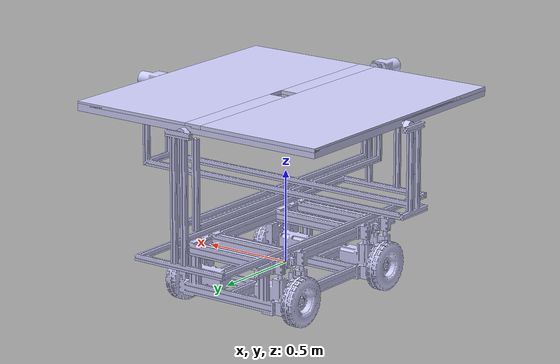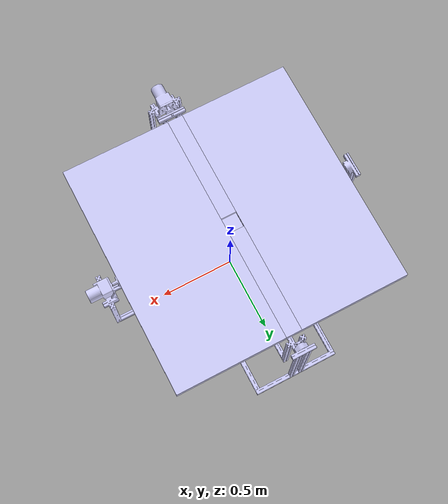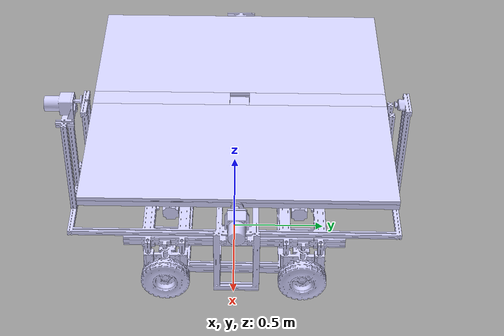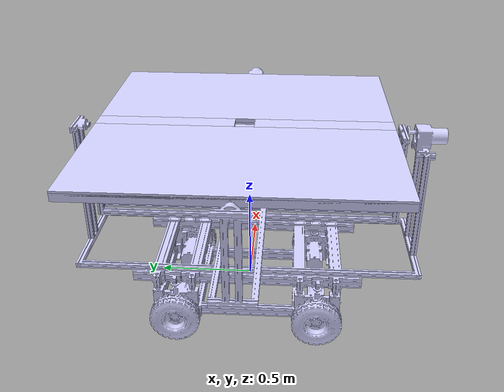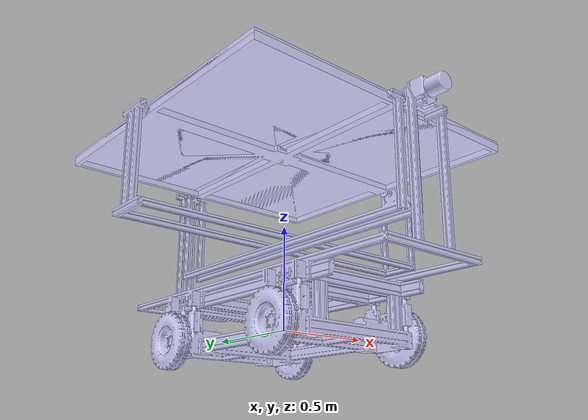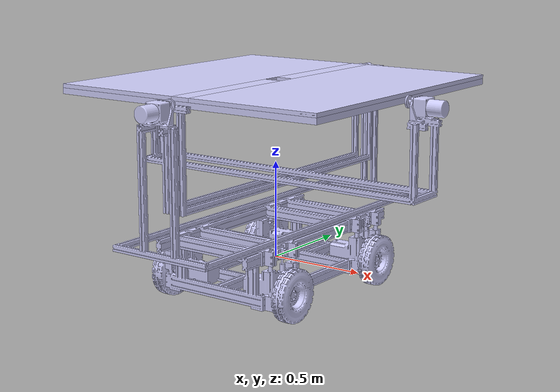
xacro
<?xml version="1.0" encoding="utf-8"?>

<robot name="Mobile_Leveling_Platform_V2" xmlns:xacro="http://ros.org/wiki/xacro">

<xacro:include filename="$(find Mobile_Leveling_Platform_V2)/urdf/Mobile_Leveling_Platform_V2.gazebo.xacro" />

<!--Mobile_Robot control-->
  <gazebo>
    <plugin name="skid_steer_drive_controller" filename="libgazebo_ros_skid_steer_drive.so">
      <updateRate>100</updateRate>
      <robotNamespace>/</robotNamespace>
      <leftFrontJoint>front_L_motor_rev_joint</leftFrontJoint>
      <rightFrontJoint>front_R_motor_rev_joint</rightFrontJoint>
      <leftRearJoint>rear_L_motor_rev_joint</leftRearJoint>
      <rightRearJoint>rear_R_motor_rev_joint</rightRearJoint>
      <wheelSeparation>0.67</wheelSeparation>
      <wheelDiameter>0.264453</wheelDiameter>
      <robotBaseFrame>base_link</robotBaseFrame>
      <torque>100</torque>
      <commandTopic>twist2gazebo</commandTopic>
      <broadcastTF>false</broadcastTF>
    </plugin>
  </gazebo>

<!--Leveling_Platform control-->
  <gazebo>
    <plugin name="gazebo_ros_control" filename="libgazebo_ros_control.so">
      <robotNamespace>platform/MLP</robotNamespace>
      <robotSimType>gazebo_ros_control/DefaultRobotHWSim</robotSimType>
    </plugin>
  </gazebo>

  <transmission name="trans1">
     <type>transmission_interface/SimpleTransmission</type>
     <joint name="front_motor_rev_joint">
       <hardwareInterface>hardware_interface/PositionJointInterface</hardwareInterface>
     </joint>
     <actuator name="front_motor_rev_motor">
       <mechanicalReduction>50</mechanicalReduction>
       <hardwareInterface>hardware_interface/PositionJointInterface</hardwareInterface>
     </actuator>
  </transmission>

  <transmission name="trans2">
     <type>transmission_interface/SimpleTransmission</type>
     <joint name="upper_motor_rev_joint">
       <hardwareInterface>hardware_interface/PositionJointInterface</hardwareInterface>
     </joint>
     <actuator name="upper_motor_rev_motor">
       <mechanicalReduction>50</mechanicalReduction>
       <hardwareInterface>hardware_interface/PositionJointInterface</hardwareInterface>
     </actuator>
  </transmission>

<!--IMU Plugin-->
  <gazebo reference="imu_link_upper">
    <gravity>true</gravity>
    <sensor name="imu_sensor" type="imu">
      <always_on>true</always_on>
      <update_rate>100</update_rate>
      <visualize>true</visualize>
      <topic>__default_topic__</topic>
      <plugin filename="libgazebo_ros_imu_sensor.so" name="imu_plugin">
        <topicName>imu_upper</topicName>
        <bodyName>imu_link_upper</bodyName>
        <updateRateHZ>10.0</updateRateHZ>
        <gaussianNoise>0.0</gaussianNoise>
        <xyzOffset>0 0 0</xyzOffset>
        <rpyOffset>0 0 0</rpyOffset>
        <frameName>imu_link_upper</frameName>
        <initialOrientationAsReference>false</initialOrientationAsReference>
      </plugin>
      <pose>0 0 0 0 0 0</pose>
    </sensor>
  </gazebo>

  <gazebo reference="imu_link_base">
    <gravity>true</gravity>
    <sensor name="imu_sensor" type="imu">
      <always_on>true</always_on>
      <update_rate>100</update_rate>
      <visualize>true</visualize>
      <topic>__default_topic__</topic>
      <plugin filename="libgazebo_ros_imu_sensor.so" name="imu_plugin">
        <topicName>imu_base</topicName>
        <bodyName>imu_link_base</bodyName>
        <updateRateHZ>10.0</updateRateHZ>
        <gaussianNoise>0.0</gaussianNoise>
        <xyzOffset>0 0 0</xyzOffset>
        <rpyOffset>0 0 0</rpyOffset>
        <frameName>imu_link_base</frameName>
        <initialOrientationAsReference>false</initialOrientationAsReference>
      </plugin>
      <pose>0 0 0 0 0 0</pose>
    </sensor>
  </gazebo>

<!-- GPS -->
  <gazebo>
    <plugin name="GazeboRosGps" filename="libhector_gazebo_ros_gps.so">
        <updateRate>100</updateRate>
        <robotNamespace>platform/MLP</robotNamespace>
        <bodyName>GPS_link</bodyName>
        <frameId>default_empty</frameId>
        <topicName>fix</topicName>
	<velocityTopicName>fix_velocity</velocityTopicName>
	<referenceLatitude>36.146581</referenceLatitude>
	<referenceLongitude>128.388039</referenceLongitude>
	<referenceHeading>90</referenceHeading>
	<referenceAltitude>0</referenceAltitude>
    	<status>STATIS_FIX</status>
	<service>SERVICE_GPS	</service>
	<offset>0 0 0 0 0 0</offset>
	<drift>0</drift>
	<driftFrequency>100</driftFrequency>
	<gaussianNoise>0</gaussianNoise>
	<velocityOffset>0</velocityOffset>
	<velocityDrift>0</velocityDrift>
	<velocityDriftFrequency>100</velocityDriftFrequency>
	<velocityGaussianNoise>0</velocityGaussianNoise>
    </plugin>
  </gazebo>

<!--link color-->
  <gazebo reference="beacon_link">
      <material>Gazebo/Green</material>
  </gazebo>

  <gazebo reference="GPS_link">
      <material>Gazebo/Black</material>
  </gazebo>

<!--link & joint-->

  <link
    name="base_link">
    <inertial>
      <origin
        xyz="0 0 0"
        rpy="0 0 0" />
      <mass
        value="15.686" />
      <inertia
        ixx="3.1779"
        ixy="0"
        ixz="0"
        iyy="3.6754"
        iyz="0"
        izz="4.4975" />
    </inertial>
    <visual>
      <origin
        xyz="0 1.5 0"
        rpy="0 0 0" />
      <geometry>
        <mesh
          filename="package://Mobile_Leveling_Platform_V2/meshes/base_link.STL" />
      </geometry>
      <material
        name="">
        <color
          rgba="0.82353 0.82353 1 1" />
      </material>
    </visual>
    <collision>
      <origin
        xyz="0 0 0"
        rpy="0 0 0" />
      <geometry>
	<box size="0.64 0.998 0.222"/>
      </geometry>
    </collision>
  </link>

  <joint
    name="imu_base_joint"
    type="fixed">
    <origin
      xyz="0 0 0.111"
      rpy="0 0 0" />
    <parent
      link="base_link" />
    <child
      link="imu_link_base" />
    <axis
      xyz="0 0 0" />
  </joint>

  <link name ="imu_link_base">
    <inertial>
      <origin
        xyz="0 0 0"
        rpy="0 0 0" />
      <mass
        value="0.1" />
      <inertia
        ixx="0.000001667"
        ixy="0"
        ixz="0"
        iyy="0.000001667"
        iyz="0"
        izz="0.000001667" />
    </inertial>
    <visual>
      <origin
        xyz="0 0 0"
        rpy="0 0 0" />
      <geometry>
	<box size = "0.01 0.01 0.01"/>
      </geometry>
      <material
        name="">
        <color
          rgba="0.82353 0.82353 1 1" />
      </material>
    </visual>
    <collision>
      <origin
        xyz="0 0 0"
        rpy="0 0 0" />
      <geometry>
	<box size = "0.01 0.01 0.01"/>
      </geometry>
    </collision>
  </link>
  <link
    name="front_L_motor_rev_link">
    <inertial>
      <origin
        xyz="0 0 0"
        rpy="0 0 0" />
      <mass
        value="0.075717" />
      <inertia
        ixx="3.7606E-05"
        ixy="1.0136E-07"
        ixz="-5.7378E-07"
        iyy="3.7419E-05"
        iyz="-1.7765E-07"
        izz="3.9868E-05" />
    </inertial>
    <visual>
      <origin
        xyz="0 0 0"
        rpy="0 0 0" />
      <geometry>
        <mesh
          filename="package://Mobile_Leveling_Platform_V2/meshes/front_L_motor_rev_link.STL" />
      </geometry>
      <material
        name="">
        <color
          rgba="0.82353 0.82353 1 1" />
      </material>
    </visual>
    <collision>
      <origin
        xyz="0 0 0"
        rpy="0 0 0" />
      <geometry>
        <mesh
          filename="package://Mobile_Leveling_Platform_V2/meshes/front_L_motor_rev_link.STL" />
      </geometry>
    </collision>
  </link>
  <joint
    name="front_L_motor_rev_joint"
    type="continuous">
    <origin
      xyz="0.363 -0.3709 -0.041791"
      rpy="0 -1.5708 0" />
    <parent
      link="base_link" />
    <child
      link="front_L_motor_rev_link" />
    <axis
      xyz="0 0 -1" />
    <dynamics
      damping="0.7"
      friction="0.0"/>
  </joint>
  <link
    name="front_L_tire_link">
    <inertial>
      <origin
        xyz="0 0 0"
        rpy="0 0 0" />
      <mass
        value="2.9551" />
      <inertia
        ixx="0.029016"
        ixy="0"
        ixz="0"
        iyy="0.015583"
        iyz="0"
        izz="0.015587" />
    </inertial>
    <visual>
      <origin
        xyz="0 0 0"
        rpy="0 0 0" />
      <geometry>
        <mesh
          filename="package://Mobile_Leveling_Platform_V2/meshes/front_L_tire_link.STL" />
      </geometry>
      <material
        name="">
        <color
          rgba="0.82353 0.82353 1 1" />
      </material>
    </visual>
    <collision>
      <origin
        xyz="0 0 0"
        rpy="0 0 0" />
      <geometry>
        <mesh
          filename="package://Mobile_Leveling_Platform_V2/meshes/front_L_tire_link.STL" />
      </geometry>
    </collision>
  </link>
  <joint
    name="front_L_tire_joint"
    type="fixed">
    <origin
      xyz="0 0 -0.011"
      rpy="0.13209 1.5708 0" />
    <parent
      link="front_L_motor_rev_link" />
    <child
      link="front_L_tire_link" />
    <axis
      xyz="0 0 0" />
  </joint>
  <link
    name="front_R_motor_link">
    <inertial>
      <origin
        xyz="0 0 0"
        rpy="0 0 0" />
      <mass
        value="0.075717" />
      <inertia
        ixx="3.7606E-05"
        ixy="1.0136E-07"
        ixz="-5.7378E-07"
        iyy="3.7419E-05"
        iyz="-1.7765E-07"
        izz="3.9868E-05" />
    </inertial>
    <visual>
      <origin
        xyz="0 0 0"
        rpy="0 0 0" />
      <geometry>
        <mesh
          filename="package://Mobile_Leveling_Platform_V2/meshes/front_R_motor_link.STL" />
      </geometry>
      <material
        name="">
        <color
          rgba="0.82353 0.82353 1 1" />
      </material>
    </visual>
    <collision>
      <origin
        xyz="0 0 0"
        rpy="0 0 0" />
      <geometry>
        <mesh
          filename="package://Mobile_Leveling_Platform_V2/meshes/front_R_motor_link.STL" />
      </geometry>
    </collision>
  </link>
  <joint
    name="front_R_motor_rev_joint"
    type="continuous">
    <origin
      xyz="-0.363 -0.3709 -0.041791"
      rpy="3.1416 -1.5708 0" />
    <parent
      link="base_link" />
    <child
      link="front_R_motor_link" />
    <axis
      xyz="0 0 1" />
    <dynamics
      damping="0.7"
      friction="0.8"/>
  </joint>
  <link
    name="front_R_tire_link">
    <inertial>
      <origin
        xyz="0 0 0"
        rpy="0 0 0" />
      <mass
        value="2.9551" />
      <inertia
        ixx="0.029016"
        ixy="0"
        ixz="0"
        iyy="0.015583"
        iyz="0"
        izz="0.015587" />
    </inertial>
    <visual>
      <origin
        xyz="0 0 0"
        rpy="0 0 0" />
      <geometry>
        <mesh
          filename="package://Mobile_Leveling_Platform_V2/meshes/front_R_tire_link.STL" />
      </geometry>
      <material
        name="">
        <color
          rgba="0.82353 0.82353 1 1" />
      </material>
    </visual>
    <collision>
      <origin
        xyz="0 0 0"
        rpy="0 0 0" />
      <geometry>
        <mesh
          filename="package://Mobile_Leveling_Platform_V2/meshes/front_R_tire_link.STL" />
      </geometry>
    </collision>
  </link>
  <joint
    name="front_R_tire_joint"
    type="fixed">
    <origin
      xyz="0 0 -0.011"
      rpy="0.14726 1.5708 0" />
    <parent
      link="front_R_motor_link" />
    <child
      link="front_R_tire_link" />
    <axis
      xyz="0 0 0" />
  </joint>
  <link
    name="rear_L_motor_rev_link">
    <inertial>
      <origin
        xyz="0 0 0"
        rpy="0 0 0" />
      <mass
        value="0.075717" />
      <inertia
        ixx="3.7606E-05"
        ixy="1.0136E-07"
        ixz="-5.7378E-07"
        iyy="3.7419E-05"
        iyz="-1.7765E-07"
        izz="3.9868E-05" />
    </inertial>
    <visual>
      <origin
        xyz="0 0 0"
        rpy="0 0 0" />
      <geometry>
        <mesh
          filename="package://Mobile_Leveling_Platform_V2/meshes/rear_L_motor_rev_link.STL" />
      </geometry>
      <material
        name="">
        <color
          rgba="0.82353 0.82353 1 1" />
      </material>
    </visual>
    <collision>
      <origin
        xyz="0 0 0"
        rpy="0 0 0" />
      <geometry>
        <mesh
          filename="package://Mobile_Leveling_Platform_V2/meshes/rear_L_motor_rev_link.STL" />
      </geometry>
    </collision>
  </link>
  <joint
    name="rear_L_motor_rev_joint"
    type="continuous">
    <origin
      xyz="0.363 0.3731 -0.041791"
      rpy="0 -1.5708 0" />
    <parent
      link="base_link" />
    <child
      link="rear_L_motor_rev_link" />
    <axis
      xyz="0 0 -1" />
    <dynamics
      damping="0.7"
      friction="0.8"/>
  </joint>
  <link
    name="rear_L_tire_link">
    <inertial>
      <origin
        xyz="0 0 0"
        rpy="0 0 0" />
      <mass
        value="2.9551" />
      <inertia
        ixx="0.029016"
        ixy="0"
        ixz="0"
        iyy="0.015583"
        iyz="0"
        izz="0.015587" />
    </inertial>
    <visual>
      <origin
        xyz="0 0 0"
        rpy="0 0 0" />
      <geometry>
        <mesh
          filename="package://Mobile_Leveling_Platform_V2/meshes/rear_L_tire_link.STL" />
      </geometry>
      <material
        name="">
        <color
          rgba="0.82353 0.82353 1 1" />
      </material>
    </visual>
    <collision>
      <origin
        xyz="0 0 0"
        rpy="0 0 0" />
      <geometry>
        <mesh
          filename="package://Mobile_Leveling_Platform_V2/meshes/rear_L_tire_link.STL" />
      </geometry>
    </collision>
  </link>
  <joint
    name="rear_L_tire_joint"
    type="fixed">
    <origin
      xyz="0 0 -0.011"
      rpy="0.13537 -1.5708 0" />
    <parent
      link="rear_L_motor_rev_link" />
    <child
      link="rear_L_tire_link" />
    <axis
      xyz="0 0 0" />
  </joint>
  <link
    name="rear_R_motor_rev_link">
    <inertial>
      <origin
        xyz="0 0 0"
        rpy="0 0 0" />
      <mass
        value="0.075717" />
      <inertia
        ixx="3.7606E-05"
        ixy="1.0136E-07"
        ixz="-5.7378E-07"
        iyy="3.7419E-05"
        iyz="-1.7765E-07"
        izz="3.9868E-05" />
    </inertial>
    <visual>
      <origin
        xyz="0 0 0"
        rpy="0 0 0" />
      <geometry>
        <mesh
          filename="package://Mobile_Leveling_Platform_V2/meshes/rear_R_motor_rev_link.STL" />
      </geometry>
      <material
        name="">
        <color
          rgba="0.82353 0.82353 1 1" />
      </material>
    </visual>
    <collision>
      <origin
        xyz="0 0 0"
        rpy="0 0 0" />
      <geometry>
        <mesh
          filename="package://Mobile_Leveling_Platform_V2/meshes/rear_R_motor_rev_link.STL" />
      </geometry>
    </collision>
  </link>
  <joint
    name="rear_R_motor_rev_joint"
    type="continuous">
    <origin
      xyz="-0.363 0.3731 -0.041791"
      rpy="3.1416 -1.5708 0" />
    <parent
      link="base_link" />
    <child
      link="rear_R_motor_rev_link" />
    <axis
      xyz="0 0 1" />
    <dynamics
      damping="0.7"
      friction="0.8"/>
  </joint>
  <link
    name="rear_R_tire_link">
    <inertial>
      <origin
        xyz="0 0 0"
        rpy="0 0 0" />
      <mass
        value="2.9551" />
      <inertia
        ixx="0.029016"
        ixy="0"
        ixz="0"
        iyy="0.015583"
        iyz="0"
        izz="0.015587" />
    </inertial>
    <visual>
      <origin
        xyz="0 0 0"
        rpy="0 0 0" />
      <geometry>
        <mesh
          filename="package://Mobile_Leveling_Platform_V2/meshes/rear_R_tire_link.STL" />
      </geometry>
      <material
        name="">
        <color
          rgba="0.82353 0.82353 1 1" />
      </material>
    </visual>
    <collision>
      <origin
        xyz="0 0 0"
        rpy="0 0 0" />
      <geometry>
        <mesh
          filename="package://Mobile_Leveling_Platform_V2/meshes/rear_R_tire_link.STL" />
      </geometry>
    </collision>
  </link>
  <joint
    name="rear_R_tire_joint"
    type="fixed">
    <origin
      xyz="0 0 -0.011"
      rpy="0.1395 1.5708 0" />
    <parent
      link="rear_R_motor_rev_link" />
    <child
      link="rear_R_tire_link" />
    <axis
      xyz="0 0 0" />
  </joint>
  <link
    name="mating_link">
    <inertial>
      <origin
        xyz="0.28001 -0.915 -0.041642"
        rpy="0 0 0" />
      <mass
        value="15" /> <!--mating_link_ mass:14.754-->
      <inertia
        ixx="4.107625"
        ixy="0"
        ixz="0"
        iyy="0.5245"
        iyz="0"
        izz="4.607125" />
    </inertial>
    <visual>
      <origin
        xyz="0 0 0"
        rpy="0 0 0" />
      <geometry>
        <mesh
          filename="package://Mobile_Leveling_Platform_V2/meshes/mating_link.STL" />
      </geometry>
      <material
        name="">
        <color
          rgba="0.82353 0.82353 1 1" />
      </material>
    </visual>
    <collision>
      <origin
        xyz="0.28001 -0.915 -0.041642"
        rpy="0 0 0" />
      <geometry>
	<box size="0.64 1.810 0.1"/>
      </geometry>
    </collision>
  </link>
  <joint
    name="mating_joint"
    type="fixed">
    <origin
      xyz="-0.28 0.88511 0.20249"
      rpy="0 0 0" />
    <parent
      link="base_link" />
    <child
      link="mating_link" />
    <axis
      xyz="0 0 0" />
  </joint>
  <link
    name="front_leveling_link">
    <inertial>
      <origin
        xyz="-0.094 -0.0078388 0.49881"
        rpy="0 0 0" />
      <mass
        value="1.9876" />
      <inertia
        ixx="0.025468"
        ixy="0"
        ixz="0"
        iyy="0.024479"
        iyz="0"
        izz="0.0026287" />
    </inertial>
    <visual>
      <origin
        xyz="0 0 0"
        rpy="0 0 0" />
      <geometry>
        <mesh
          filename="package://Mobile_Leveling_Platform_V2/meshes/front_leveling_link.STL" />
      </geometry>
      <material
        name="">
        <color
          rgba="0.82353 0.82353 1 1" />
      </material>
    </visual>
    <collision>
      <origin
        xyz="-0.1 -0.03 0.355"
        rpy="0 0 0" />
      <geometry>
	<box size = "0.218 0.153 0.697"/>
      </geometry>
    </collision>
  </link>
  <joint
    name="front_leveling_joint"
    type="fixed">
    <origin
      xyz="0.374 -1.768 0.015"
      rpy="0 0 0" />
    <parent
      link="mating_link" />
    <child
      link="front_leveling_link" />
    <axis
      xyz="0 0 0" />
  </joint>
  <link
    name="front_motor_rev_link">
    <inertial>
      <origin
        xyz="9.7145E-16 0.030907 2.2204E-16"
        rpy="0 0 0" />
      <mass
        value="0.025329" />
      <inertia
        ixx="6.8991E-06"
        ixy="-2.7437E-22"
        ixz="3.1069E-40"
        iyy="1.0461E-05"
        iyz="1.7456E-23"
        izz="6.8991E-06" />
    </inertial>
    <visual>
      <origin
        xyz="0 0 0"
        rpy="0 0 0" />
      <geometry>
        <mesh
          filename="package://Mobile_Leveling_Platform_V2/meshes/front_motor_rev_link.STL" />
      </geometry>
      <material
        name="">
        <color
          rgba="0.82353 0.82353 1 1" />
      </material>
    </visual>
    <collision>
      <origin
        xyz="0 0 0"
        rpy="0 0 0" />
      <geometry>
        <mesh
          filename="package://Mobile_Leveling_Platform_V2/meshes/front_motor_rev_link.STL" />
      </geometry>
    </collision>
  </link>
  <joint
    name="GPS_joint"
    type="fixed">
    <origin
      xyz="9.7145E-16 0.030907 0.0095"
      rpy="0 3.141592 0" />
    <parent
      link="front_motor_rev_link" />
    <child
      link="GPS_link" />
    <axis
      xyz="0 0 0" />
  </joint>
  <link
    name="GPS_link">
    <inertial>
      <origin
        xyz="9.7145E-16 0.030907 0.015"
        rpy="0 3.141592 0" />
      <mass
        value="0.1" />
      <inertia
        ixx="0.000001667"
        ixy="0"
        ixz="0"
        iyy="0.000001667"
        iyz="0"
        izz="0.000001667" />
    </inertial>
    <visual>
      <origin
        xyz="9.7145E-16 0.030907 0.015"
        rpy="0 3.141592 0" />
      <geometry>
	<box size = "0.01 0.01 0.01"/>
      </geometry>
      <material
        name="">
        <color
          rgba="0.82353 0.82353 1 1" />
      </material>
    </visual>
    <collision>
      <origin
        xyz="9.7145E-16 0.030907 0.015"
        rpy="0 3.141592 0" />
      <geometry>
	<box size = "0.01 0.01 0.01"/>
      </geometry>
    </collision>
  </link>
  <joint
    name="front_motor_rev_joint"
    type="revolute">
    <origin
      xyz="-0.094 0.055 0.67"
      rpy="3.1416 0 -3.1416" />
    <parent
      link="front_leveling_link" />
    <child
      link="front_motor_rev_link" />
    <axis
      xyz="0 1 0" />
    <limit
      lower="-0.5236"
      upper="0.5236"
      effort="10"
      velocity="10" />
    <dynamics
      damping="0.7"
      friction="0.8"/>
  </joint>

  <link
    name="under_upper_link">
    <inertial>
      <origin
        xyz="0.0862 0.80081 -0.32342"
        rpy="0.017453289 0 0" />
      <mass
        value="8.5158" />
      <inertia
        ixx="1.146358675"
        ixy="0"
        ixz="0"
        iyy="1.146358675"
        iyz="0"
        izz="1.930760367" />
    </inertial>
    <visual>
      <origin
        xyz="0 0 0"
        rpy="0 0 0" />
      <geometry>
        <mesh
          filename="package://Mobile_Leveling_Platform_V2/meshes/under_upper_link.STL" />
      </geometry>
      <material
        name="">
        <color
          rgba="0.82353 0.82353 1 1" />
      </material>
    </visual>
    <collision>
      <origin
        xyz="0.0862 0.80081 -0.32342"
        rpy="0 0 0" />
      <geometry>
        <box size="1.166345146172 1.166345146172 0.505" />
      </geometry>
    </collision>
  </link>

  <joint
    name="under_upper_joint"
    type="fixed">
    <origin
      xyz="0.087597 0.053 0.015743"
      rpy="-3.1416 0 -3.1416" />
    <parent
      link="front_motor_rev_link" />
    <child
      link="under_upper_link" />
    <axis
      xyz="0 0 0" />
  </joint>
  <link
    name="upper_motor_rev_link">
    <inertial>
      <origin
        xyz="-2.2204E-16 0.030907 1.1102E-16"
        rpy="0 0 0" />
      <mass
        value="0.025329" />
      <inertia
        ixx="6.8991E-06"
        ixy="5.9833E-22"
        ixz="-5.5917E-22"
        iyy="1.0461E-05"
        iyz="1.757E-23"
        izz="6.8991E-06" />
    </inertial>
    <visual>
      <origin
        xyz="0 0 0"
        rpy="0 0 0" />
      <geometry>
        <mesh
          filename="package://Mobile_Leveling_Platform_V2/meshes/upper_motor_rev_link.STL" />
      </geometry>
      <material
        name="">
        <color
          rgba="0.82353 0.82353 1 1" />
      </material>
    </visual>
    <collision>
      <origin
        xyz="0 0 0"
        rpy="0 0 0" />
      <geometry>
        <mesh
          filename="package://Mobile_Leveling_Platform_V2/meshes/upper_motor_rev_link.STL" />
      </geometry>
    </collision>
  </link>
  <joint
    name="upper_motor_rev_joint"
    type="revolute">
    <origin
      xyz="0.877 0.79375 0"
      rpy="0 -0.0058456 1.5708" />
    <parent
      link="under_upper_link" />
    <child
      link="upper_motor_rev_link" />
    <axis
      xyz="0 -1 0" />
    <limit
      lower="-0.5236"
      upper="0.5236"
      effort="10"
      velocity="10" />
    <dynamics
      damping="0.7"
      friction="0.8"/>
  </joint>
  <link
    name="upper_link">
    <inertial>
      <origin
        xyz="-0.00040832 -0.00031982 -0.0067744"
        rpy="0 0 0" />
      <mass
        value="12.075" />
      <inertia
        ixx="2.264968125"
        ixy="0"
        ixz="0"
        iyy="2.264968125"
        iyz="0"
        izz="4.528125" />
    </inertial>
    <visual>
      <origin
        xyz="0 0 0"
        rpy="0 0 0" />
      <geometry>
        <mesh
          filename="package://Mobile_Leveling_Platform_V2/meshes/upper.STL" />
      </geometry>
      <material
        name="">
        <color
          rgba="0.82353 0.82353 1 1" />
      </material>
    </visual>
    <collision>
      <origin
        xyz="-0.00040832 -0.00031982 -0.0067744"
        rpy="0 0 0" />
      <geometry>
        <box size="1.5 1.5 0.03" />
      </geometry>
    </collision>
  </link>

  <joint
     name="beacon_case_1"
     type="fixed">
     <origin
        xyz="0 0 0"
        rpy="0 0 0" />
     <parent
        link="upper_link" />
     <child
        link="beacon_case_1" />
     <axis
        xyz="0 0 0" />
  </joint>
  <link name ="beacon_case_1">
    <inertial>
      <origin
        xyz="0 0 0"
        rpy="0 0 0" />
      <mass
        value="0.1" />
      <inertia
        ixx="0.000001667"
        ixy="0"
        ixz="0"
        iyy="0.000001667"
        iyz="0"
        izz="0.000001667" />
    </inertial>
    <visual>
      <origin
        xyz="-0.4 0 0.02"
        rpy="0 0 0" />
      <geometry>
	<box size = "0.7 1.5 0.02"/>
      </geometry>
      <material
        name="">
        <color
          rgba="0.82353 0.82353 1 1" />
      </material>
    </visual>
    <collision>
      <origin
        xyz="-0.4 0 0.02"
        rpy="0 0 0" />
      <geometry>
	<box size = "0.7 1.5 0.02"/>
      </geometry>
    </collision>
  </link>

  <joint
     name="beacon_case_2"
     type="fixed">
     <origin
        xyz="0 0 0"
        rpy="0 0 0" />
     <parent
        link="upper_link" />
     <child
        link="beacon_case_2" />
     <axis
        xyz="0 0 0" />
  </joint>
  <link name ="beacon_case_2">
    <inertial>
      <origin
        xyz="0 0 0"
        rpy="0 0 0" />
      <mass
        value="0.1" />
      <inertia
        ixx="0.000001667"
        ixy="0"
        ixz="0"
        iyy="0.000001667"
        iyz="0"
        izz="0.000001667" />
    </inertial>
    <visual>
      <origin
        xyz="0.4 0 0.02"
        rpy="0 0 0" />
      <geometry>
	<box size = "0.7 1.5 0.02"/>
      </geometry>
      <material
        name="">
        <color
          rgba="0.82353 0.82353 1 1" />
      </material>
    </visual>
    <collision>
      <origin
        xyz="0.4 0 0.02"
        rpy="0 0 0" />
      <geometry>
	<box size = "0.7 1.5 0.02"/>
      </geometry>
    </collision>
  </link>

  <joint
     name="beacon_case_3"
     type="fixed">
     <origin
        xyz="0 0 0"
        rpy="0 0 0" />
     <parent
        link="upper_link" />
     <child
        link="beacon_case_3" />
     <axis
        xyz="0 0 0" />
  </joint>
  <link name ="beacon_case_3">
    <inertial>
      <origin
        xyz="0 0 0"
        rpy="0 0 0" />
      <mass
        value="0.1" />
      <inertia
        ixx="0.000001667"
        ixy="0"
        ixz="0"
        iyy="0.000001667"
        iyz="0"
        izz="0.000001667" />
    </inertial>
    <visual>
      <origin
        xyz="0 -0.4 0.02"
        rpy="0 0 0" />
      <geometry>
	<box size = "0.1 0.7 0.02"/>
      </geometry>
      <material
        name="">
        <color
          rgba="0.82353 0.82353 1 1" />
      </material>
    </visual>
    <collision>
      <origin
        xyz="0 -0.4 0.02"
        rpy="0 0 0" />
      <geometry>
	<box size = "0.1 0.7 0.02"/>
      </geometry>
    </collision>
  </link>

  <joint
     name="beacon_case_4"
     type="fixed">
     <origin
        xyz="0 0 0"
        rpy="0 0 0" />
     <parent
        link="upper_link" />
     <child
        link="beacon_case_4" />
     <axis
        xyz="0 0 0" />
  </joint>
  <link name ="beacon_case_4">
    <inertial>
      <origin
        xyz="0 0 0"
        rpy="0 0 0" />
      <mass
        value="0.1" />
      <inertia
        ixx="0.000001667"
        ixy="0"
        ixz="0"
        iyy="0.000001667"
        iyz="0"
        izz="0.000001667" />
    </inertial>
    <visual>
      <origin
        xyz="0 0.4 0.02"
        rpy="0 0 0" />
      <geometry>
	<box size = "0.1 0.7 0.02"/>
      </geometry>
      <material
        name="">
        <color
          rgba="0.82353 0.82353 1 1" />
      </material>
    </visual>
    <collision>
      <origin
        xyz="0 0.4 0.02"
        rpy="0 0 0" />
      <geometry>
	<box size = "0.1 0.7 0.02"/>
      </geometry>
    </collision>
  </link>

  <joint
    name="upper_joint"
    type="fixed">
    <origin
      xyz="0.0038376 0.788 0.014978"
      rpy="-0.0058456 0 -1.5708" />
    <parent
      link="upper_motor_rev_link" />
    <child
      link="upper_link" />
    <axis
      xyz="0 0 0" />
  </joint>

  <link name ="imu_link_upper">
    <inertial>
      <origin
        xyz="-0.00040832 -0.00031982 -0.01"
        rpy="0 0 0" />
      <mass
        value="0.1" />
      <inertia
        ixx="0.000001667"
        ixy="0"
        ixz="0"
        iyy="0.000001667"
        iyz="0"
        izz="0.000001667" />
    </inertial>
    <visual>
      <origin
        xyz="-0.00040832 -0.00031982 -0.02"
        rpy="0 0 0" />
      <geometry>
	<box size = "0.01 0.01 0.01"/>
      </geometry>
      <material
        name="">
        <color
          rgba="255 255 255" />
      </material>
    </visual>
    <collision>
      <origin
        xyz="-0.00040832 -0.00031982 -0.02"
        rpy="0 0 0" />
      <geometry>
	<box size = "0.12 0.12 0.12"/>
      </geometry>
    </collision>
  </link>

  <joint
    name="imu_joint"
    type="fixed">
    <origin
      xyz="-0.00040832 -0.00031982 -0.015"
      rpy="0 0 0" />
    <parent
      link="upper_link" />
    <child
      link="imu_link_upper" />
    <axis
      xyz="0 0 0" />
  </joint>
  <link
    name="rear_Leveling_link">
    <inertial>
      <origin
        xyz="0.03175 -0.0029488 0.36"
        rpy="0 0 0" />
      <mass
        value="2.75" />
      <inertia
        ixx="0.025468"
        ixy="0"
        ixz="0"
        iyy="0.024479"
        iyz="0"
        izz="0.0026287" />
    </inertial>
    <visual>
      <origin
        xyz="0 0 0"
        rpy="0 0 0" />
      <geometry>
        <mesh
          filename="package://Mobile_Leveling_Platform_V2/meshes/rear_Leveling_link.STL" />
      </geometry>
      <material
        name="">
        <color
          rgba="0.82353 0.82353 1 1" />
      </material>
    </visual>
    <collision>
      <origin
        xyz="0.03175 -0.0029488 0.36"
        rpy="0 0 0" />
      <geometry>
	<box size="0.1535 0.080 0.697"/>
      </geometry>
    </collision>
  </link>
  <joint
    name="rear_Leveling_joint"
    type="fixed">
    <origin
      xyz="0.24825 0 0.015"
      rpy="0 0 0" />
    <parent
      link="mating_link" />
    <child
      link="rear_Leveling_link" />
    <axis
      xyz="0 0 0" />
  </joint>

</robot>
